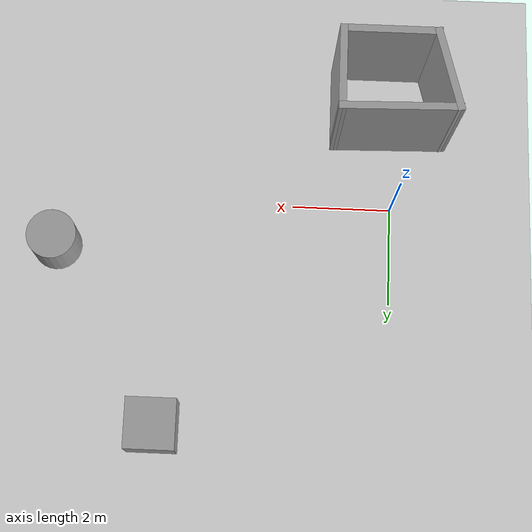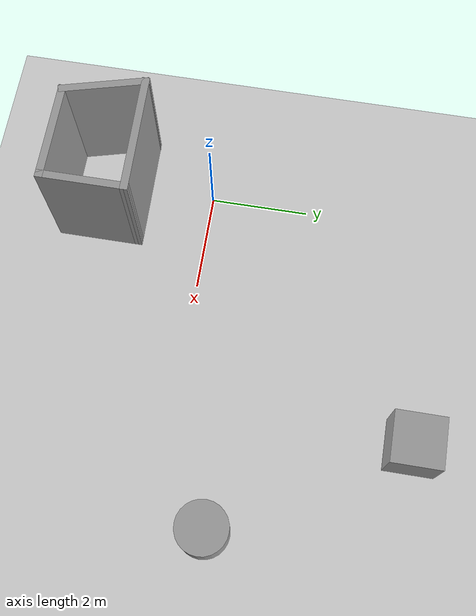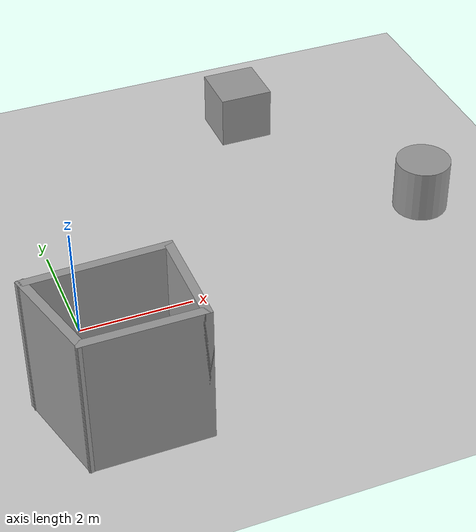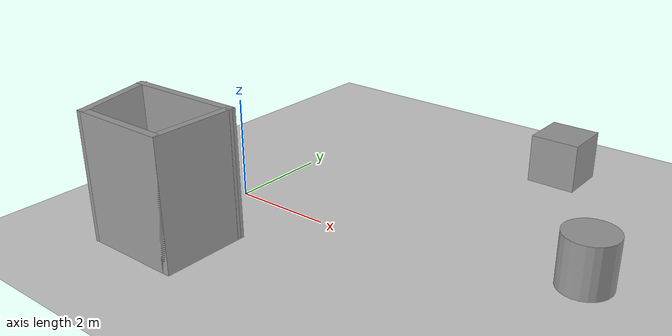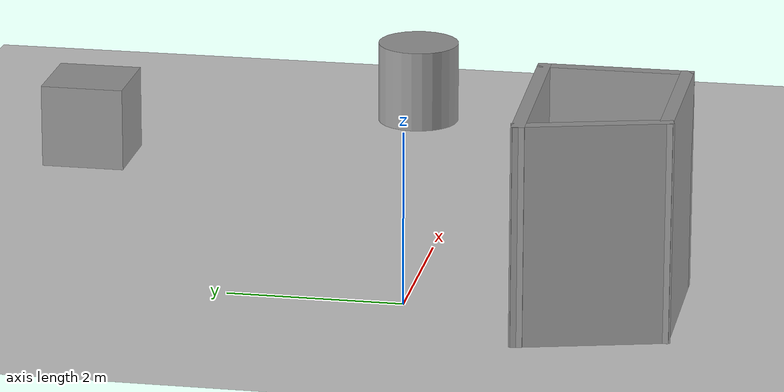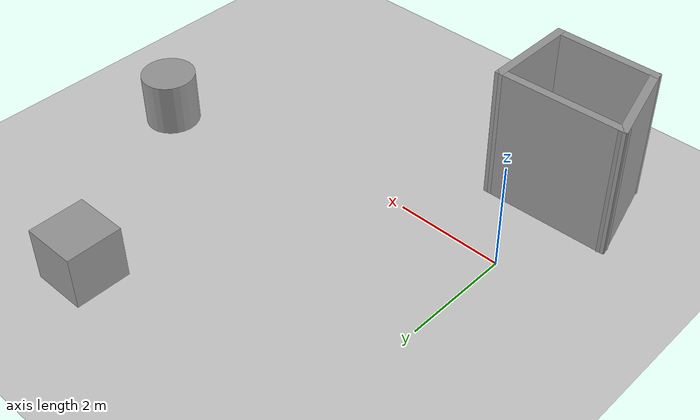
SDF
<sdf version="1.6">
 <world name="default">
  <light name="sun" type="directional">
   <cast_shadows>0</cast_shadows>
   <pose>0 0 10 0 -0 0</pose>
   <diffuse>0.8 0.8 0.8 1</diffuse>
   <specular>0.1 0.1 0.1 1</specular>
   <attenuation>
    <range>1000</range>
    <constant>0.9</constant>
    <linear>0.01</linear>
    <quadratic>0.001</quadratic>
   </attenuation>
   <direction>-0.5 0.5 -1</direction>
  </light>
  <model name="ground_plane">
   <static>1</static>
   <link name="link">
    <collision name="collision">
     <geometry><plane><normal>0 0 1</normal><size>100 100</size></plane></geometry>
     <surface><friction><ode><mu>100</mu><mu2>50</mu2></ode></friction></surface>
    </collision>
    <visual name="visual">
     <cast_shadows>0</cast_shadows>
     <geometry><plane><normal>0 0 1</normal><size>100 100</size></plane></geometry>
     <material>
      <script><uri>file://media/materials/scripts/gazebo.material</uri><name>Gazebo/Grey</name></script>
     </material>
    </visual>
   </link>
  </model>
  <gravity>0 0 -9.8</gravity>
  <magnetic_field>6e-06 2.3e-05 -4.2e-05</magnetic_field>
  <atmosphere type="adiabatic"/>
  <physics name="default_physics" default="0" type="ode">
   <max_step_size>0.001</max_step_size>
   <real_time_factor>1</real_time_factor>
   <real_time_update_rate>1000</real_time_update_rate>
  </physics>
  <scene><ambient>0.4 0.4 0.4 1</ambient><background>0.7 0.7 0.7 1</background><shadows>0</shadows></scene>
  <spherical_coordinates>
   <surface_model>EARTH_WGS84</surface_model>
   <latitude_deg>0</latitude_deg>
   <longitude_deg>0</longitude_deg>
   <elevation>0</elevation>
   <heading_deg>0</heading_deg>
  </spherical_coordinates>
  <model name="wall">
   <pose>0.054519 -2.18302 0 0 -0 0</pose>
   <link name="Wall_6">
    <collision name="Wall_6_Collision">
     <geometry><box><size>1.75 0.15 2.5</size></box></geometry>
     <pose>0 0 1.25 0 -0 0</pose>
    </collision>
    <visual name="Wall_6_Visual">
     <pose>0 0 1.25 0 -0 0</pose>
     <geometry><box><size>1.75 0.15 2.5</size></box></geometry>
     <material>
      <script><uri>file://media/materials/scripts/gazebo.material</uri><name>Gazebo/Grey</name></script>
      <ambient>1 1 1 1</ambient>
     </material>
    </visual>
    <pose>-0.917464 -0.019723 0 0 0 -1.309</pose>
   </link>
   <link name="Wall_7">
    <collision name="Wall_7_Collision">
     <geometry><box><size>2 0.15 2.5</size></box></geometry>
     <pose>0 0 1.25 0 -0 0</pose>
    </collision>
    <visual name="Wall_7_Visual">
     <pose>0 0 1.25 0 -0 0</pose>
     <geometry><box><size>2 0.15 2.5</size></box></geometry>
     <material>
      <script><uri>file://media/materials/scripts/gazebo.material</uri><name>Gazebo/Grey</name></script>
      <ambient>1 1 1 1</ambient>
     </material>
    </visual>
    <pose>0.214591 -0.792464 0 0 -0 0</pose>
   </link>
   <link name="Wall_8">
    <collision name="Wall_8_Collision">
     <geometry><box><size>1.75 0.15 2.5</size></box></geometry>
     <pose>0 0 1.25 0 -0 0</pose>
    </collision>
    <visual name="Wall_8_Visual">
     <pose>0 0 1.25 0 -0 0</pose>
     <geometry><box><size>1.75 0.15 2.5</size></box></geometry>
     <material>
      <script><uri>file://media/materials/scripts/gazebo.material</uri><name>Gazebo/Grey</name></script>
      <ambient>1 1 1 1</ambient>
     </material>
    </visual>
    <pose>1.13959 0.007536 0 0 -0 1.5708</pose>
   </link>
   <link name="Wall_9">
    <collision name="Wall_9_Collision">
     <geometry><box><size>2.41477 0.15 2.5</size></box></geometry>
     <pose>0 0 1.25 0 -0 0</pose>
    </collision>
    <visual name="Wall_9_Visual">
     <pose>0 0 1.25 0 -0 0</pose>
     <geometry><box><size>2.41477 0.15 2.5</size></box></geometry>
     <material>
      <script><uri>file://media/materials/scripts/gazebo.material</uri><name>Gazebo/Grey</name></script>
      <ambient>1 1 1 1</ambient>
     </material>
    </visual>
    <pose>0.007536 0.780277 0 0 0 -3.11752</pose>
   </link>
   <static>1</static>
  </model>
  <model name="unit_box_0">
   <pose>4.65103 4.67434 0.499995 -1e-05 0 0</pose>
   <link name="link">
    <inertial>
     <mass>1</mass>
     <inertia>
      <ixx>0.166667</ixx>
      <ixy>0</ixy>
      <ixz>0</ixz>
      <iyy>0.166667</iyy>
      <iyz>0</iyz>
      <izz>0.166667</izz>
     </inertia>
    </inertial>
    <collision name="collision"><geometry><box><size>1 1 1</size></box></geometry></collision>
    <visual name="visual">
     <geometry><box><size>1 1 1</size></box></geometry>
     <material>
      <script><name>Gazebo/Grey</name><uri>file://media/materials/scripts/gazebo.material</uri></script>
     </material>
    </visual>
   </link>
  </model>
  <model name="unit_cylinder_0">
   <pose>6.83634 1.01592 0.499997 3e-06 4e-06 -0</pose>
   <link name="link">
    <inertial>
     <mass>1</mass>
     <inertia><ixx>0.145833</ixx><ixy>0</ixy><ixz>0</ixz><iyy>0.145833</iyy><iyz>0</iyz><izz>0.125</izz></inertia>
    </inertial>
    <collision name="collision">
     <geometry><cylinder><radius>0.5</radius><length>1</length></cylinder></geometry>
    </collision>
    <visual name="visual">
     <geometry><cylinder><radius>0.5</radius><length>1</length></cylinder></geometry>
     <material>
      <script><name>Gazebo/Grey</name><uri>file://media/materials/scripts/gazebo.material</uri></script>
     </material>
    </visual>
   </link>
  </model>
 </world>
</sdf>
